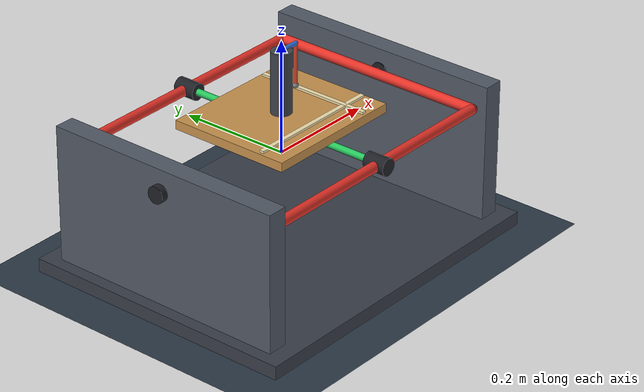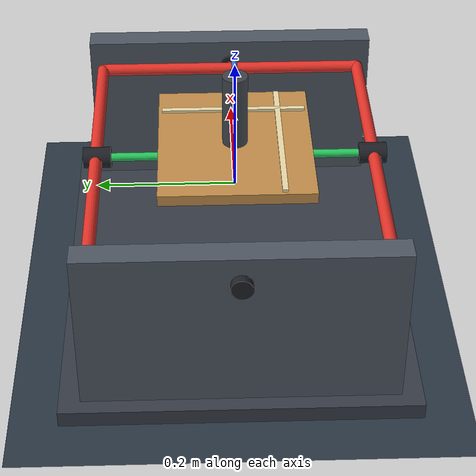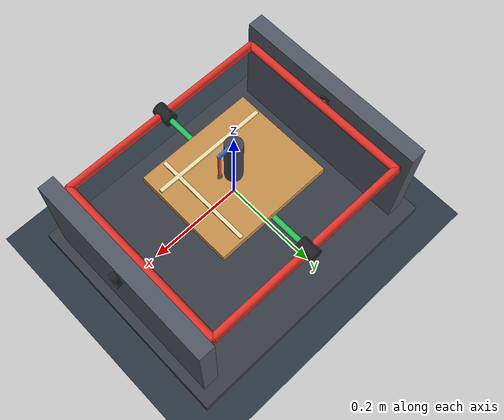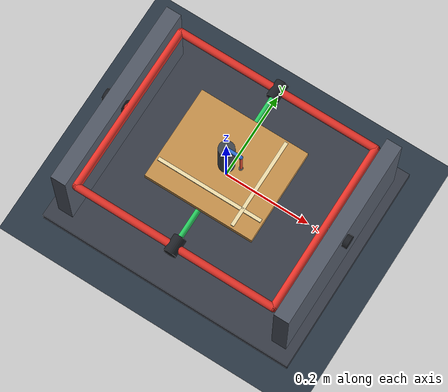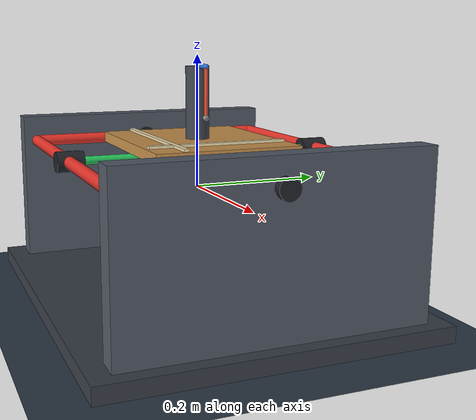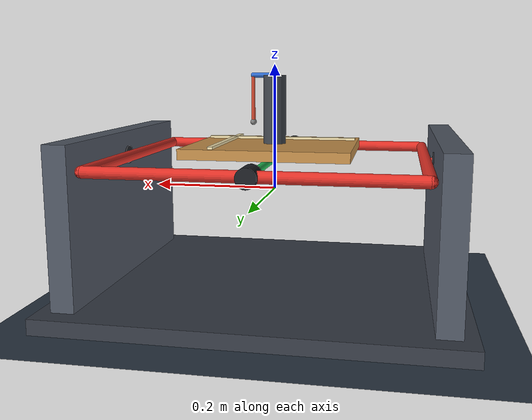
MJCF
<!-- Two-axis board concept: nested roll/pitch gimbal carrying the validated Furuta rig. -->
<mujoco model="furuta_2d_board">
  <compiler angle="radian" autolimits="true"/>
  <option timestep="0.001" integrator="RK4" gravity="0 0 -9.81"/>

  <visual>
    <headlight diffuse="0.7 0.7 0.7" ambient="0.35 0.35 0.35"/>
  </visual>

  <asset>
    <texture name="sky" type="skybox" builtin="gradient" rgb1=".55 .65 .75"
             rgb2=".08 .10 .15" width="256" height="256"/>
    <texture name="grid" type="2d" builtin="checker" rgb1=".22 .28 .34"
             rgb2=".12 .16 .20" width="300" height="300"/>
    <material name="grid" texture="grid" texrepeat="10 10" reflectance="0.1"/>
    <material name="boardmat" rgba=".78 .57 .30 1"/>
    <material name="rollmat" rgba=".90 .20 .16 1"/>
    <material name="pitchmat" rgba=".15 .78 .36 1"/>
  </asset>

  <default>
    <geom contype="0" conaffinity="0"/>
  </default>

  <worldbody>
    <light pos=".6 .4 1.4" dir="-.4 -.3 -1"/>
    <geom name="floor" type="plane" size=".8 .8 .05" pos="0 0 -.18" material="grid"/>

    <!-- Fixed pedestal and bearing towers. -->
    <geom name="base_plate" type="box" size=".31 .25 .012" pos="0 0 -.165"
          rgba=".22 .24 .28 1"/>
    <geom type="box" size=".018 .22 .13" pos="-.27 0 -.04" rgba=".32 .35 .40 1"/>
    <geom type="box" size=".018 .22 .13" pos=".27 0 -.04" rgba=".32 .35 .40 1"/>
    <!-- Fixed roll-bearing housings carried by the two support towers. -->
    <geom type="cylinder" fromto="-.300 0 .05 -.250 0 .05" size=".015"
          rgba=".12 .13 .15 1"/>
    <geom type="cylinder" fromto=".250 0 .05 .300 0 .05" size=".015"
          rgba=".12 .13 .15 1"/>

    <!-- OUTER GIMBAL: rolls about world X (red axle). -->
    <body name="roll_frame" pos="0 0 .05">
      <joint name="board_roll" type="hinge" axis="1 0 0" range="-.26179939 .26179939"
             damping="1.5" armature=".01"/>
      <inertial pos="0 0 0" mass=".50" diaginertia=".010 .010 .018"/>
      <!-- Split roll axle stubs: no fictitious shaft passes through the board. -->
      <geom name="roll_axle_left" type="cylinder" fromto="-.275 0 0 -.235 0 0"
            size=".006" material="rollmat"/>
      <geom name="roll_axle_right" type="cylinder" fromto=".235 0 0 .275 0 0"
            size=".006" material="rollmat"/>
      <geom name="roll_frame_left" type="capsule" fromto="-.24 -.20 0 -.24 .20 0"
            size=".009" material="rollmat" contype="1" conaffinity="1"/>
      <geom name="roll_frame_right" type="capsule" fromto=".24 -.20 0 .24 .20 0"
            size=".009" material="rollmat" contype="1" conaffinity="1"/>
      <geom name="roll_frame_front" type="capsule" fromto="-.24 -.20 0 .24 -.20 0"
            size=".009" material="rollmat" contype="1" conaffinity="1"/>
      <geom name="roll_frame_back" type="capsule" fromto="-.24 .20 0 .24 .20 0"
            size=".009" material="rollmat" contype="1" conaffinity="1"/>
      <!-- Pitch-bearing housings are fixed to the outer roll frame. -->
      <geom name="pitch_bearing_front" type="cylinder" fromto="0 -.218 0 0 -.178 0"
            size=".015" rgba=".12 .13 .15 1"/>
      <geom name="pitch_bearing_back" type="cylinder" fromto="0 .178 0 0 .218 0"
            size=".015" rgba=".12 .13 .15 1"/>

      <!-- INNER GIMBAL: pitches about the roll frame's local Y (green axle). -->
      <body name="pitch_frame">
        <joint name="board_pitch" type="hinge" axis="0 1 0" range="-.26179939 .26179939"
               damping="1.2" armature=".008"/>
        <inertial pos="0 0 .025" mass=".65" diaginertia=".012 .012 .020"/>
        <geom name="pitch_axis" type="cylinder" fromto="0 -.205 0 0 .205 0"
              size=".006" material="pitchmat"/>

        <!-- The moving board and complete Furuta assembly. -->
        <geom name="board_plate" type="box" size=".13 .11 .008" pos="0 0 .016"
              material="boardmat" contype="1" conaffinity="1"/>
        <geom type="box" size=".004 .105 .003" pos=".08 0 .025" rgba=".95 .88 .68 1"/>
        <geom type="box" size=".125 .004 .003" pos="0 -.065 .025" rgba=".95 .88 .68 1"/>
        <geom type="cylinder" size=".018 .055" pos="0 0 .078" rgba=".25 .27 .30 1"/>

        <body name="arm" pos="0 0 .133">
          <joint name="arm" type="hinge" axis="0 0 1" damping="9.4e-4"
                 frictionloss="6.0e-3"/>
          <inertial pos="0 0 0" mass=".015" diaginertia="6.84e-5 6.84e-5 6.84e-5"/>
          <geom type="capsule" fromto="0 0 0 .035 0 0" size=".004" rgba=".2 .45 .85 1"/>

          <body name="pole" pos=".035 0 0">
            <joint name="pole" type="hinge" axis="-1 0 0" damping="3.41989e-5"
                   frictionloss="1.64973e-4"/>
            <inertial pos="0 0 -.0375" mass=".027"
                      diaginertia="8.4e-6 8.4e-6 1e-7"/>
            <geom type="capsule" fromto="0 0 0 0 0 -.075" size=".003" rgba=".85 .3 .2 1"/>
            <site name="tip" pos="0 0 -.075" size=".005"/>
          </body>
        </body>
      </body>
    </body>
  </worldbody>

  <!-- Explicit pairs make board/frame interference visible despite their parent-child relation. -->
  <contact>
    <pair geom1="board_plate" geom2="roll_frame_left"/>
    <pair geom1="board_plate" geom2="roll_frame_right"/>
    <pair geom1="board_plate" geom2="roll_frame_front"/>
    <pair geom1="board_plate" geom2="roll_frame_back"/>
  </contact>

  <actuator>
    <motor name="motor" joint="arm" gear=".0127" ctrlrange="-6 6"/>
    <position name="roll_servo" joint="board_roll" kp="80" ctrlrange="-.26179939 .26179939"/>
    <position name="pitch_servo" joint="board_pitch" kp="80" ctrlrange="-.26179939 .26179939"/>
  </actuator>
</mujoco>
